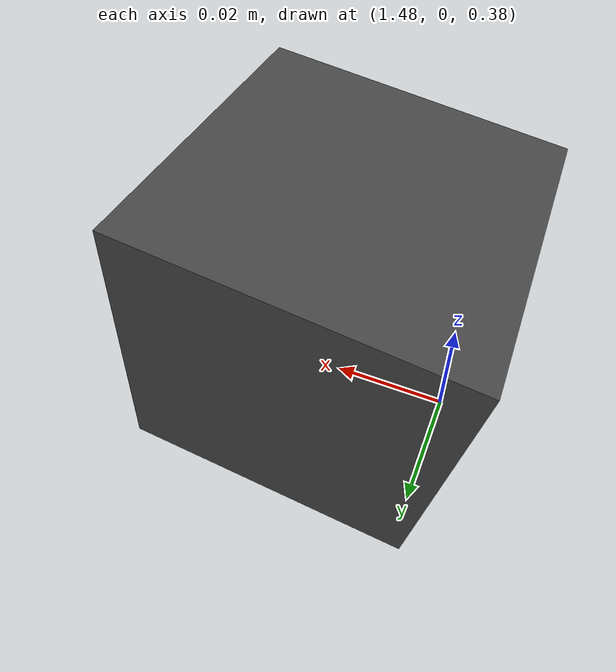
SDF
<?xml version="1.0"?>
<!--
  external_cam — OMX 외부 시점 가상 카메라 (dashboard 임베드용).
  Gazebo Sim (gz harmonic) sensor. 토픽: /external_cam/image (~15Hz).
  pose: x/y/z (m) + roll/pitch/yaw (rad). OMX base = world origin 가정.
-->
<sdf version="1.9">
  <model name="external_cam">
    <static>true</static>
    <!-- 카메라 위치 (m) + RPY (rad). OMX base = world origin.
         (1.5, 0, 0.4) 의 정면 약간 위에서 OMX 향함. yaw=π = -X 방향 = origin 방향. -->
    <pose>1.5 0 0.4 0 0.15 3.14159</pose>
    <link name="camera_link">
      <pose>0 0 0 0 0 0</pose>
      <visual name="camera_visual">
        <geometry>
          <box>
            <size>0.05 0.05 0.05</size>
          </box>
        </geometry>
        <material>
          <ambient>0.2 0.2 0.2 1</ambient>
          <diffuse>0.3 0.3 0.3 1</diffuse>
        </material>
      </visual>
      <sensor name="external_cam_sensor" type="camera">
        <pose>0 0 0 0 0 0</pose>
        <camera>
          <horizontal_fov>1.047</horizontal_fov>
          <image>
            <width>640</width>
            <height>480</height>
            <format>R8G8B8</format>
          </image>
          <clip>
            <near>0.1</near>
            <far>100</far>
          </clip>
        </camera>
        <always_on>1</always_on>
        <update_rate>15</update_rate>
        <topic>external_cam/image</topic>
      </sensor>
    </link>
  </model>
</sdf>
